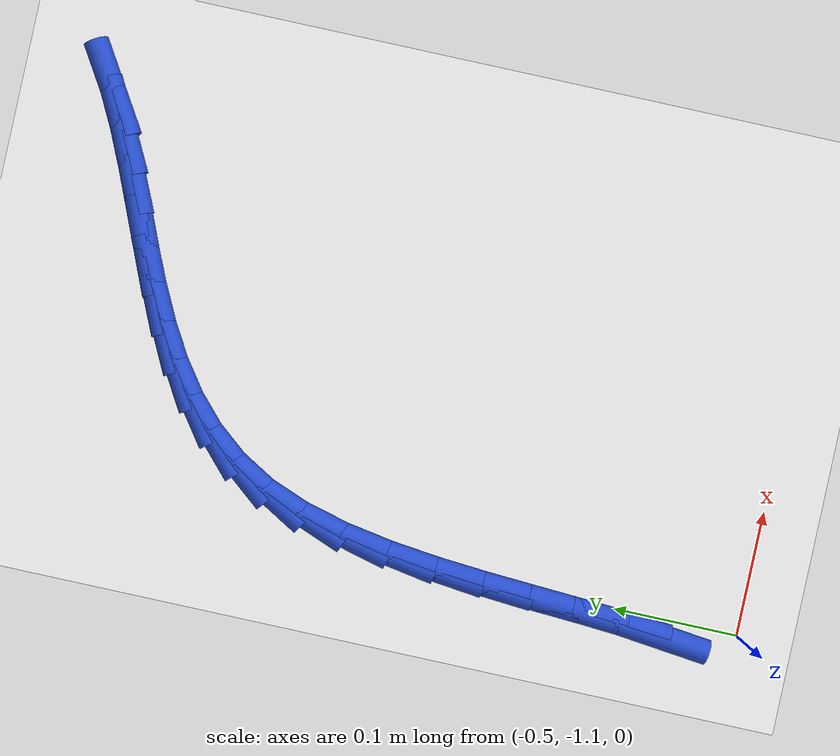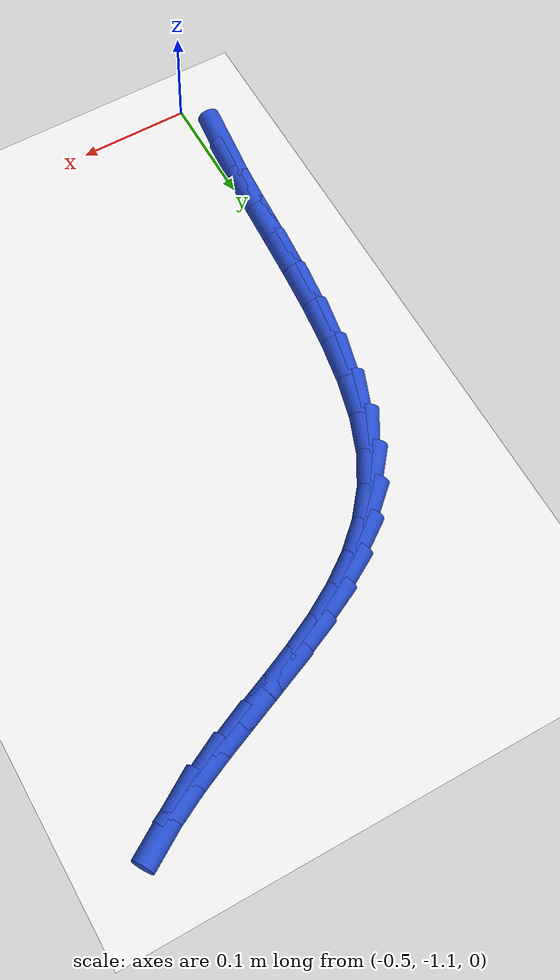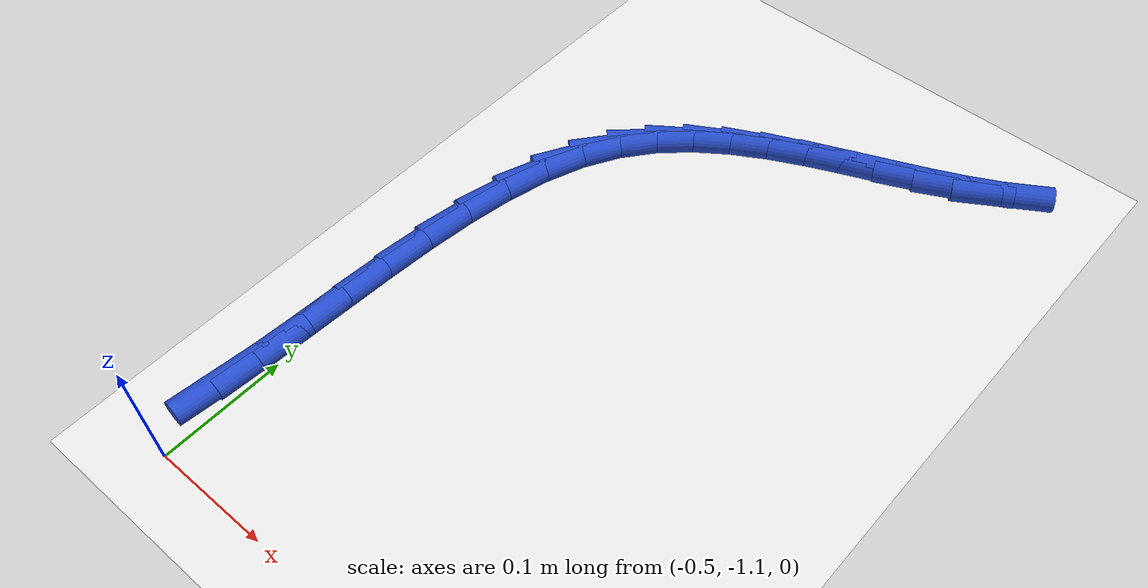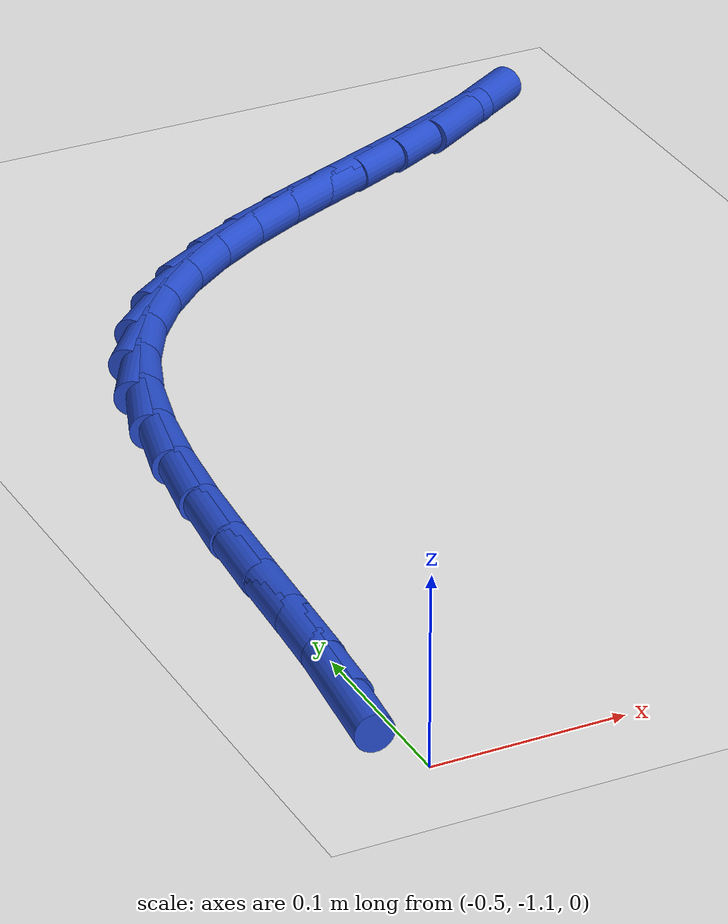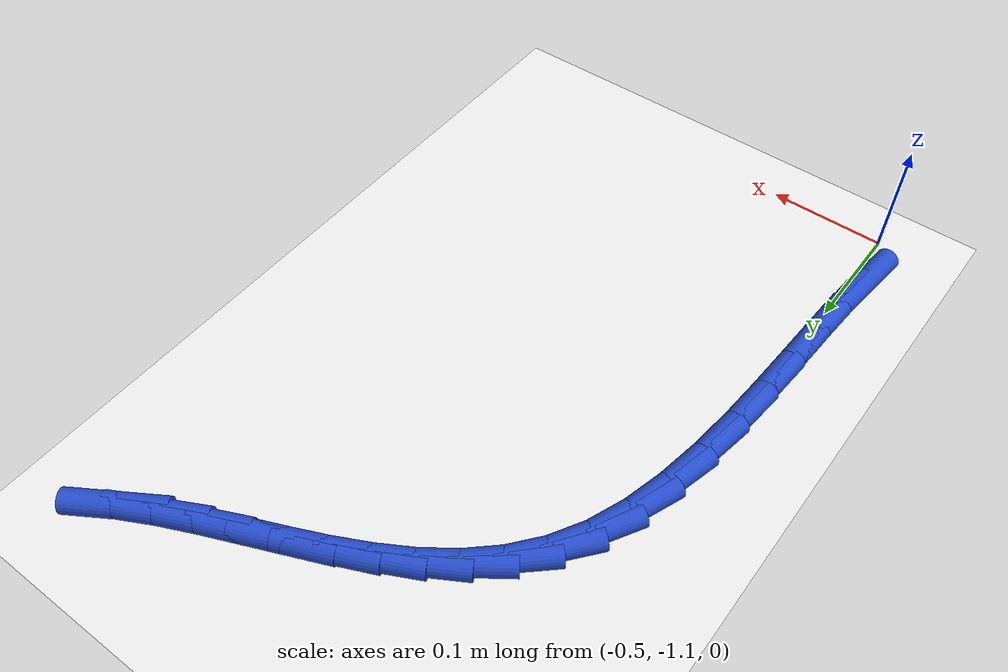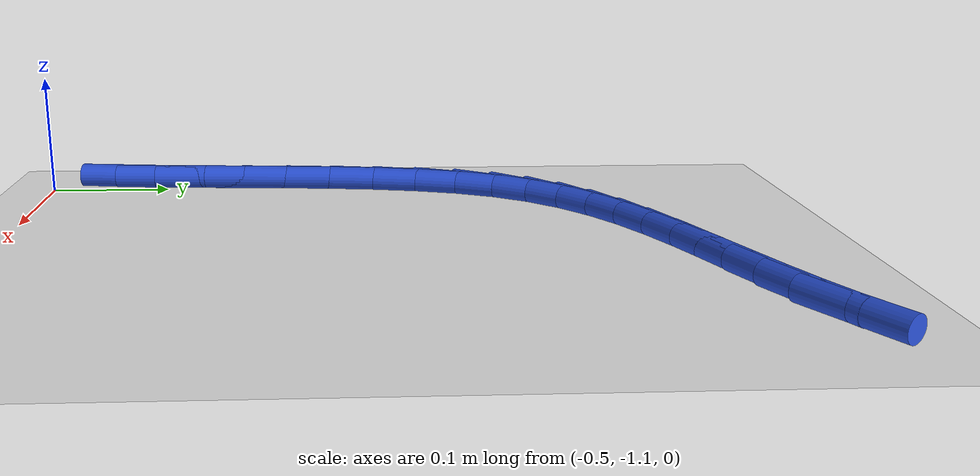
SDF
<sdf version="1.6">
 <world name="default">
  <model name="ground_plane">
   <static>1</static>
   <link name="link">
    <collision name="collision">
     <geometry><plane><normal>0 0 1</normal><size>100 100</size></plane></geometry>
     <surface><friction><ode><mu>100</mu><mu2>50</mu2></ode></friction></surface>
    </collision>
    <visual name="visual">
     <cast_shadows>0</cast_shadows>
     <geometry><plane><normal>0 0 1</normal><size>100 100</size></plane></geometry>
     <material>
      <script><uri>file://media/materials/scripts/gazebo.material</uri><name>Gazebo/WhiteGlow</name></script>
     </material>
    </visual>
   </link>
  </model>
  <model name="line">
   <link name="link_211">
    <pose>-0.5119601213993552 -1.037916020017996 0.01 0 1.57 1.4581047870088655</pose>
    <collision name="collision">
     <geometry><cylinder><radius>0.01</radius><length>0.08</length></cylinder></geometry>
    </collision>
    <visual name="visual">
     <material>
      <script><name>Gazebo/Blue</name><uri>file://media/materials/scripts/gazebo.material</uri></script>
     </material>
     <geometry><cylinder><radius>0.01</radius><length>0.08</length></cylinder></geometry>
    </visual>
   </link>
   <link name="link_212">
    <pose>-0.5083555584804197 -1.0060654355231782 0.01 0 1.57 1.4981355064701423</pose>
    <collision name="collision">
     <geometry><cylinder><radius>0.01</radius><length>0.08</length></cylinder></geometry>
    </collision>
    <visual name="visual">
     <material>
      <script><name>Gazebo/Blue</name><uri>file://media/materials/scripts/gazebo.material</uri></script>
     </material>
     <geometry><cylinder><radius>0.01</radius><length>0.08</length></cylinder></geometry>
    </visual>
   </link>
   <link name="link_213">
    <pose>-0.5057940071987281 -0.9708739568350532 0.01 0 1.57 1.514162945887117</pose>
    <collision name="collision">
     <geometry><cylinder><radius>0.01</radius><length>0.08</length></cylinder></geometry>
    </collision>
    <visual name="visual">
     <material>
      <script><name>Gazebo/Blue</name><uri>file://media/materials/scripts/gazebo.material</uri></script>
     </material>
     <geometry><cylinder><radius>0.01</radius><length>0.08</length></cylinder></geometry>
    </visual>
   </link>
   <link name="link_214">
    <pose>-0.5036632718174222 -0.9332908766363243 0.01 0 1.57 1.5116190661490756</pose>
    <collision name="collision">
     <geometry><cylinder><radius>0.01</radius><length>0.08</length></cylinder></geometry>
    </collision>
    <visual name="visual">
     <material>
      <script><name>Gazebo/Blue</name><uri>file://media/materials/scripts/gazebo.material</uri></script>
     </material>
     <geometry><cylinder><radius>0.01</radius><length>0.08</length></cylinder></geometry>
    </visual>
   </link>
   <link name="link_215">
    <pose>-0.5013511565996441 -0.8942654876096945 0.01 0 1.57 1.4923690564451986</pose>
    <collision name="collision">
     <geometry><cylinder><radius>0.01</radius><length>0.08</length></cylinder></geometry>
    </collision>
    <visual name="visual">
     <material>
      <script><name>Gazebo/Blue</name><uri>file://media/materials/scripts/gazebo.material</uri></script>
     </material>
     <geometry><cylinder><radius>0.01</radius><length>0.08</length></cylinder></geometry>
    </visual>
   </link>
   <link name="link_216">
    <pose>-0.49824546580853574 -0.8547470824378671 0.01 0 1.57 1.4558112544300168</pose>
    <collision name="collision">
     <geometry><cylinder><radius>0.01</radius><length>0.08</length></cylinder></geometry>
    </collision>
    <visual name="visual">
     <material>
      <script><name>Gazebo/Blue</name><uri>file://media/materials/scripts/gazebo.material</uri></script>
     </material>
     <geometry><cylinder><radius>0.01</radius><length>0.08</length></cylinder></geometry>
    </visual>
   </link>
   <link name="link_217">
    <pose>-0.4937340037072389 -0.8156849538035454 0.01 0 1.57 1.3991091637482513</pose>
    <collision name="collision">
     <geometry><cylinder><radius>0.01</radius><length>0.08</length></cylinder></geometry>
    </collision>
    <visual name="visual">
     <material>
      <script><name>Gazebo/Blue</name><uri>file://media/materials/scripts/gazebo.material</uri></script>
     </material>
     <geometry><cylinder><radius>0.01</radius><length>0.08</length></cylinder></geometry>
    </visual>
   </link>
   <link name="link_218">
    <pose>-0.48720457455889576 -0.7780283943894323 0.01 0 1.57 1.3169284758510609</pose>
    <collision name="collision">
     <geometry><cylinder><radius>0.01</radius><length>0.08</length></cylinder></geometry>
    </collision>
    <visual name="visual">
     <material>
      <script><name>Gazebo/Blue</name><uri>file://media/materials/scripts/gazebo.material</uri></script>
     </material>
     <geometry><cylinder><radius>0.01</radius><length>0.08</length></cylinder></geometry>
    </visual>
   </link>
   <link name="link_219">
    <pose>-0.4780449826266482 -0.7427266968782309 0.01 0 1.57 1.2010331709023598</pose>
    <collision name="collision">
     <geometry><cylinder><radius>0.01</radius><length>0.08</length></cylinder></geometry>
    </collision>
    <visual name="visual">
     <material>
      <script><name>Gazebo/Blue</name><uri>file://media/materials/scripts/gazebo.material</uri></script>
     </material>
     <geometry><cylinder><radius>0.01</radius><length>0.08</length></cylinder></geometry>
    </visual>
   </link>
   <link name="link_220">
    <pose>-0.4656430321736381 -0.7107291539526442 0.01 0 1.57 1.0468099871124033</pose>
    <collision name="collision">
     <geometry><cylinder><radius>0.01</radius><length>0.08</length></cylinder></geometry>
    </collision>
    <visual name="visual">
     <material>
      <script><name>Gazebo/Blue</name><uri>file://media/materials/scripts/gazebo.material</uri></script>
     </material>
     <geometry><cylinder><radius>0.01</radius><length>0.08</length></cylinder></geometry>
    </visual>
   </link>
   <link name="link_221">
    <pose>-0.44951348236156 -0.6828169423388968 0.01 0 1.57 0.8864735936128701</pose>
    <collision name="collision">
     <geometry><cylinder><radius>0.01</radius><length>0.08</length></cylinder></geometry>
    </collision>
    <visual name="visual">
     <material>
      <script><name>Gazebo/Blue</name><uri>file://media/materials/scripts/gazebo.material</uri></script>
     </material>
     <geometry><cylinder><radius>0.01</radius><length>0.08</length></cylinder></geometry>
    </visual>
   </link>
   <link name="link_222">
    <pose>-0.42991177495129074 -0.6587904135644291 0.01 0 1.57 0.7425217138202739</pose>
    <collision name="collision">
     <geometry><cylinder><radius>0.01</radius><length>0.08</length></cylinder></geometry>
    </collision>
    <visual name="visual">
     <material>
      <script><name>Gazebo/Blue</name><uri>file://media/materials/scripts/gazebo.material</uri></script>
     </material>
     <geometry><cylinder><radius>0.01</radius><length>0.08</length></cylinder></geometry>
    </visual>
   </link>
   <link name="link_223">
    <pose>-0.4073612125402465 -0.6380952130267776 0.01 0 1.57 0.6223379947361541</pose>
    <collision name="collision">
     <geometry><cylinder><radius>0.01</radius><length>0.08</length></cylinder></geometry>
    </collision>
    <visual name="visual">
     <material>
      <script><name>Gazebo/Blue</name><uri>file://media/materials/scripts/gazebo.material</uri></script>
     </material>
     <geometry><cylinder><radius>0.01</radius><length>0.08</length></cylinder></geometry>
    </visual>
   </link>
   <link name="link_224">
    <pose>-0.38238546479977736 -0.6201765000375823 0.01 0 1.57 0.5285923631091596</pose>
    <collision name="collision">
     <geometry><cylinder><radius>0.01</radius><length>0.08</length></cylinder></geometry>
    </collision>
    <visual name="visual">
     <material>
      <script><name>Gazebo/Blue</name><uri>file://media/materials/scripts/gazebo.material</uri></script>
     </material>
     <geometry><cylinder><radius>0.01</radius><length>0.08</length></cylinder></geometry>
    </visual>
   </link>
   <link name="link_225">
    <pose>-0.3555082014012337 -0.6044794339084842 0.01 0 1.57 0.46088906553078995</pose>
    <collision name="collision">
     <geometry><cylinder><radius>0.01</radius><length>0.08</length></cylinder></geometry>
    </collision>
    <visual name="visual">
     <material>
      <script><name>Gazebo/Blue</name><uri>file://media/materials/scripts/gazebo.material</uri></script>
     </material>
     <geometry><cylinder><radius>0.01</radius><length>0.08</length></cylinder></geometry>
    </visual>
   </link>
   <link name="link_226">
    <pose>-0.32725309201596553 -0.5904491739511237 0.01 0 1.57 0.41767438917533634</pose>
    <collision name="collision">
     <geometry><cylinder><radius>0.01</radius><length>0.08</length></cylinder></geometry>
    </collision>
    <visual name="visual">
     <material>
      <script><name>Gazebo/Blue</name><uri>file://media/materials/scripts/gazebo.material</uri></script>
     </material>
     <geometry><cylinder><radius>0.01</radius><length>0.08</length></cylinder></geometry>
    </visual>
   </link>
   <link name="link_227">
    <pose>-0.2981438063153229 -0.5775308794771413 0.01 0 1.57 0.397525682714808</pose>
    <collision name="collision">
     <geometry><cylinder><radius>0.01</radius><length>0.08</length></cylinder></geometry>
    </collision>
    <visual name="visual">
     <material>
      <script><name>Gazebo/Blue</name><uri>file://media/materials/scripts/gazebo.material</uri></script>
     </material>
     <geometry><cylinder><radius>0.01</radius><length>0.08</length></cylinder></geometry>
    </visual>
   </link>
   <link name="link_228">
    <pose>-0.268704013970656 -0.5651697097981775 0.01 0 1.57 0.3998146032792242</pose>
    <collision name="collision">
     <geometry><cylinder><radius>0.01</radius><length>0.08</length></cylinder></geometry>
    </collision>
    <visual name="visual">
     <material>
      <script><name>Gazebo/Blue</name><uri>file://media/materials/scripts/gazebo.material</uri></script>
     </material>
     <geometry><cylinder><radius>0.01</radius><length>0.08</length></cylinder></geometry>
    </visual>
   </link>
   <link name="link_229">
    <pose>-0.23945738465331506 -0.5528108242258729 0.01 0 1.57 0.42498070776406804</pose>
    <collision name="collision">
     <geometry><cylinder><radius>0.01</radius><length>0.08</length></cylinder></geometry>
    </collision>
    <visual name="visual">
     <material>
      <script><name>Gazebo/Blue</name><uri>file://media/materials/scripts/gazebo.material</uri></script>
     </material>
     <geometry><cylinder><radius>0.01</radius><length>0.08</length></cylinder></geometry>
    </visual>
   </link>
   <link name="link_230">
    <pose>-0.21092758803465012 -0.5398993820718679 0.01 0 1.57 0.47455698173406374</pose>
    <collision name="collision">
     <geometry><cylinder><radius>0.01</radius><length>0.08</length></cylinder></geometry>
    </collision>
    <visual name="visual">
     <material>
      <script><name>Gazebo/Blue</name><uri>file://media/materials/scripts/gazebo.material</uri></script>
     </material>
     <geometry><cylinder><radius>0.01</radius><length>0.08</length></cylinder></geometry>
    </visual>
   </link>
   <link name="link_231">
    <pose>-0.1836382937860113 -0.5258805426478034 0.01 0 1.57 0.5508962017913952</pose>
    <collision name="collision">
     <geometry><cylinder><radius>0.01</radius><length>0.08</length></cylinder></geometry>
    </collision>
    <visual name="visual">
     <material>
      <script><name>Gazebo/Blue</name><uri>file://media/materials/scripts/gazebo.material</uri></script>
     </material>
     <geometry><cylinder><radius>0.01</radius><length>0.08</length></cylinder></geometry>
    </visual>
   </link>
  </model>
 </world>
</sdf>
